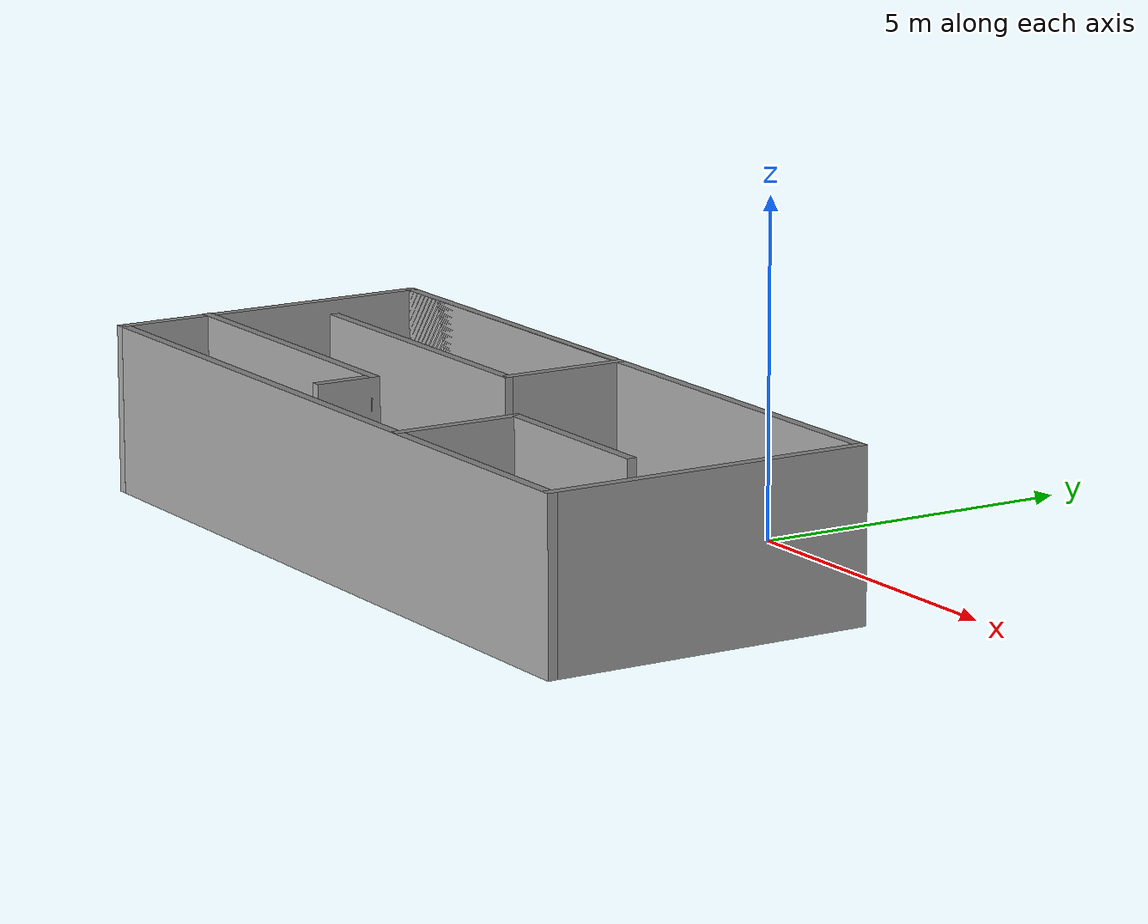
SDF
<?xml version='1.0'?>
<sdf version='1.7'>
  <model name='my_room2'>
    <pose>-1.56 -3.2125 0 0 -0 0</pose>
    <link name='Wall_0'>
      <collision name='Wall_0_Collision'>
        <geometry>
          <box>
            <size>12 0.15 2.5</size>
          </box>
        </geometry>
        <pose>0 0 1.25 0 -0 0</pose>
      </collision>
      <visual name='Wall_0_Visual'>
        <pose>0 0 1.25 0 -0 0</pose>
        <geometry>
          <box>
            <size>12 0.15 2.5</size>
          </box>
        </geometry>
        <material>
          <script>
            <uri>file://media/materials/scripts/gazebo.material</uri>
            <name>Gazebo/Grey</name>
          </script>
          <ambient>1 1 1 1</ambient>
        </material>
        <meta>
          <layer>0</layer>
        </meta>
      </visual>
      <pose>0.015 1.7125 0 0 -0 0</pose>
    </link>
    <link name='Wall_1'>
      <collision name='Wall_1_Collision'>
        <geometry>
          <box>
            <size>5 0.15 2.5</size>
          </box>
        </geometry>
        <pose>0 0 1.25 0 -0 0</pose>
      </collision>
      <visual name='Wall_1_Visual'>
        <pose>0 0 1.25 0 -0 0</pose>
        <geometry>
          <box>
            <size>5 0.15 2.5</size>
          </box>
        </geometry>
        <material>
          <script>
            <uri>file://media/materials/scripts/gazebo.material</uri>
            <name>Gazebo/Grey</name>
          </script>
          <ambient>1 1 1 1</ambient>
        </material>
        <meta>
          <layer>0</layer>
        </meta>
      </visual>
      <pose>5.94 -0.7125 0 0 -0 -1.5708</pose>
    </link>
    <link name='Wall_11'>
      <collision name='Wall_11_Collision'>
        <geometry>
          <box>
            <size>2 0.15 2.5</size>
          </box>
        </geometry>
        <pose>0 0 1.25 0 -0 0</pose>
      </collision>
      <visual name='Wall_11_Visual'>
        <pose>0 0 1.25 0 -0 0</pose>
        <geometry>
          <box>
            <size>2 0.15 2.5</size>
          </box>
        </geometry>
        <material>
          <script>
            <uri>file://media/materials/scripts/gazebo.material</uri>
            <name>Gazebo/Grey</name>
          </script>
          <ambient>1 1 1 1</ambient>
        </material>
        <meta>
          <layer>0</layer>
        </meta>
      </visual>
      <pose>2.04 -2.1925 0 0 -0 1.5708</pose>
    </link>
    <link name='Wall_12'>
      <collision name='Wall_12_Collision'>
        <geometry>
          <box>
            <size>3 0.15 2.5</size>
          </box>
        </geometry>
        <pose>0 0 1.25 0 -0 0</pose>
      </collision>
      <visual name='Wall_12_Visual'>
        <pose>0 0 1.25 0 -0 0</pose>
        <geometry>
          <box>
            <size>3 0.15 2.5</size>
          </box>
        </geometry>
        <material>
          <script>
            <uri>file://media/materials/scripts/gazebo.material</uri>
            <name>Gazebo/Grey</name>
          </script>
          <ambient>1 1 1 1</ambient>
        </material>
        <meta>
          <layer>0</layer>
        </meta>
      </visual>
      <pose>3.465 -1.2675 0 0 -0 0</pose>
    </link>
    <link name='Wall_2'>
      <collision name='Wall_2_Collision'>
        <geometry>
          <box>
            <size>12 0.15 2.5</size>
          </box>
        </geometry>
        <pose>0 0 1.25 0 -0 0</pose>
      </collision>
      <visual name='Wall_2_Visual'>
        <pose>0 0 1.25 0 -0 0</pose>
        <geometry>
          <box>
            <size>12 0.15 2.5</size>
          </box>
        </geometry>
        <material>
          <script>
            <uri>file://media/materials/scripts/gazebo.material</uri>
            <name>Gazebo/Grey</name>
          </script>
          <ambient>1 1 1 1</ambient>
        </material>
        <meta>
          <layer>0</layer>
        </meta>
      </visual>
      <pose>0.015 -3.1375 0 0 -0 3.14159</pose>
    </link>
    <link name='Wall_3'>
      <collision name='Wall_3_Collision'>
        <geometry>
          <box>
            <size>5 0.15 2.5</size>
          </box>
        </geometry>
        <pose>0 0 1.25 0 -0 0</pose>
      </collision>
      <visual name='Wall_3_Visual'>
        <pose>0 0 1.25 0 -0 0</pose>
        <geometry>
          <box>
            <size>5 0.15 2.5</size>
          </box>
        </geometry>
        <material>
          <script>
            <uri>file://media/materials/scripts/gazebo.material</uri>
            <name>Gazebo/Grey</name>
          </script>
          <ambient>1 1 1 1</ambient>
        </material>
        <meta>
          <layer>0</layer>
        </meta>
      </visual>
      <pose>-5.91 -0.7125 0 0 -0 1.5708</pose>
    </link>
    <link name='Wall_4'>
      <collision name='Wall_4_Collision'>
        <geometry>
          <box>
            <size>6 0.15 2.5</size>
          </box>
        </geometry>
        <pose>0 0 1.25 0 -0 0</pose>
      </collision>
      <visual name='Wall_4_Visual'>
        <pose>0 0 1.25 0 -0 0</pose>
        <geometry>
          <box>
            <size>6 0.15 2.5</size>
          </box>
        </geometry>
        <material>
          <script>
            <uri>file://media/materials/scripts/gazebo.material</uri>
            <name>Gazebo/Grey</name>
          </script>
          <ambient>1 1 1 1</ambient>
        </material>
        <meta>
          <layer>0</layer>
        </meta>
      </visual>
      <pose>-2.985 1.7125 0 0 -0 0</pose>
    </link>
    <link name='Wall_5'>
      <collision name='Wall_5_Collision'>
        <geometry>
          <box>
            <size>2 0.15 2.5</size>
          </box>
        </geometry>
        <pose>0 0 1.25 0 -0 0</pose>
      </collision>
      <visual name='Wall_5_Visual'>
        <pose>0 0 1.25 0 -0 0</pose>
        <geometry>
          <box>
            <size>2 0.15 2.5</size>
          </box>
        </geometry>
        <material>
          <script>
            <uri>file://media/materials/scripts/gazebo.material</uri>
            <name>Gazebo/Grey</name>
          </script>
          <ambient>1 1 1 1</ambient>
        </material>
        <meta>
          <layer>0</layer>
        </meta>
      </visual>
      <pose>-0.06 0.7875 0 0 -0 -1.5708</pose>
    </link>
    <link name='Wall_6'>
      <collision name='Wall_6_Collision'>
        <geometry>
          <box>
            <size>5 0.15 2.5</size>
          </box>
        </geometry>
        <pose>0 0 1.25 0 -0 0</pose>
      </collision>
      <visual name='Wall_6_Visual'>
        <pose>0 0 1.25 0 -0 0</pose>
        <geometry>
          <box>
            <size>5 0.15 2.5</size>
          </box>
        </geometry>
        <material>
          <script>
            <uri>file://media/materials/scripts/gazebo.material</uri>
            <name>Gazebo/Grey</name>
          </script>
          <ambient>1 1 1 1</ambient>
        </material>
        <meta>
          <layer>0</layer>
        </meta>
      </visual>
      <pose>-2.485 -0.1375 0 0 -0 3.14159</pose>
    </link>
    <link name='Wall_8'>
      <collision name='Wall_8_Collision'>
        <geometry>
          <box>
            <size>5 0.15 2.5</size>
          </box>
        </geometry>
        <pose>0 0 1.25 0 -0 0</pose>
      </collision>
      <visual name='Wall_8_Visual'>
        <pose>0 0 1.25 0 -0 0</pose>
        <geometry>
          <box>
            <size>5 0.15 2.5</size>
          </box>
        </geometry>
        <material>
          <script>
            <uri>file://media/materials/scripts/gazebo.material</uri>
            <name>Gazebo/Grey</name>
          </script>
          <ambient>1 1 1 1</ambient>
        </material>
        <meta>
          <layer>0</layer>
        </meta>
      </visual>
      <pose>-3.515 -1.7175 0 0 -0 0</pose>
    </link>
    <link name='Wall_9'>
      <collision name='Wall_9_Collision'>
        <geometry>
          <box>
            <size>1 0.15 2.5</size>
          </box>
        </geometry>
        <pose>0 0 1.25 0 -0 0</pose>
      </collision>
      <visual name='Wall_9_Visual'>
        <pose>0 0 1.25 0 -0 0</pose>
        <geometry>
          <box>
            <size>1 0.15 2.5</size>
          </box>
        </geometry>
        <material>
          <script>
            <uri>file://media/materials/scripts/gazebo.material</uri>
            <name>Gazebo/Grey</name>
          </script>
          <ambient>1 1 1 1</ambient>
        </material>
        <meta>
          <layer>0</layer>
        </meta>
      </visual>
      <pose>-1.09 -2.1425 0 0 -0 -1.5708</pose>
    </link>
    <static>1</static>
  </model>
</sdf>
